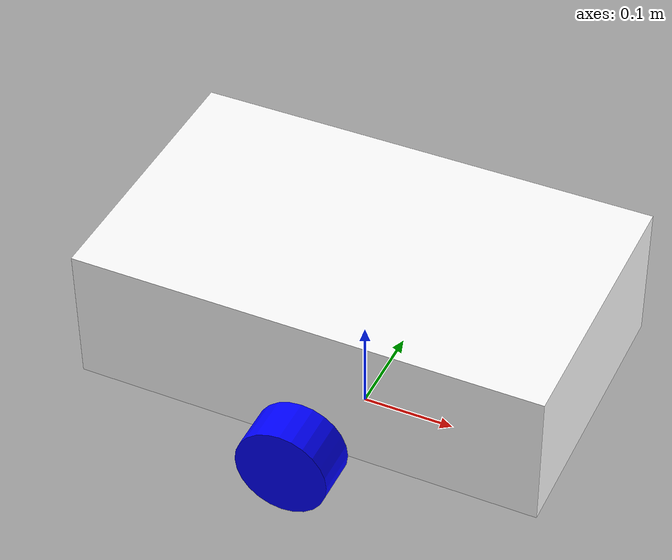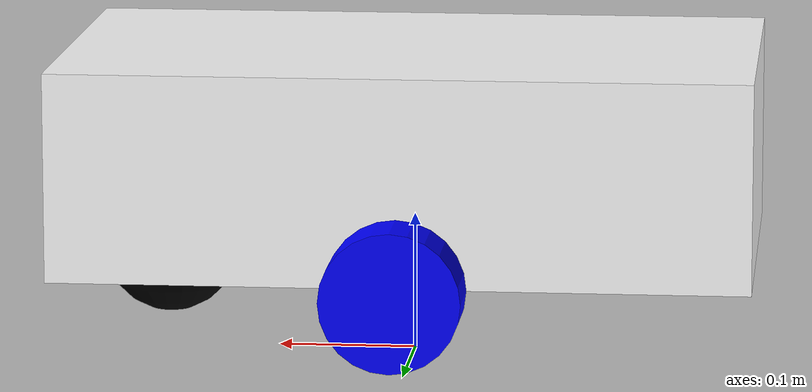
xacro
<?xml version="1.0"?>
<robot name="my_robot" xmlns:xacro="http://www.ros.org/wiki/xacro">

    <xacro:include filename="inertial_macros.xacro" />

    <material name="white"><color rgba="1 1 1 1"/></material>
    <material name="blue"><color rgba="0 0 1 1"/></material>
    <material name="black"><color rgba="0 0 0 1"/></material>

    <link name="base_footprint"></link>

    <joint name="base_link_joint" type="fixed">
        <parent link="base_footprint"/>
        <child link="base_link"/>
        <origin xyz="0 0 0.075" rpy="0 0 0"/>
    </joint>

    <link name="base_link">
        <visual>
            <origin xyz="0 0 0.075" rpy="0 0 0"/>
            <geometry><box size="0.5 0.3 0.15"/></geometry>
            <material name="white"/>
        </visual>
        <collision>
            <origin xyz="0 0 0.075" rpy="0 0 0"/>
            <geometry><box size="0.5 0.3 0.15"/></geometry>
        </collision>
        <xacro:inertial_box mass="0.5" x="0.5" y="0.3" z="0.15">
            <origin xyz="0 0 0.075" rpy="0 0 0"/>
        </xacro:inertial_box>
    </link>
    <gazebo reference="base_link"><material>Gazebo/White</material></gazebo>

    <joint name="left_wheel_joint" type="continuous">
        <parent link="base_link"/>
        <child link="left_wheel"/>
        <origin xyz="0 0.175 0" rpy="${-pi/2} 0 0"/>
        <axis xyz="0 0 1"/>
    </joint>

    <link name="left_wheel">
        <visual>
            <origin xyz="0 0 0" rpy="0 0 0"/>
            <geometry><cylinder radius="0.05" length="0.05"/></geometry>
            <material name="blue"/>
        </visual>
        <collision>
            <origin xyz="0 0 0" rpy="0 0 0"/>
            <geometry><cylinder radius="0.05" length="0.05"/></geometry>
        </collision>
        <xacro:inertial_cylinder mass="0.1" length="0.05" radius="0.05">
            <origin xyz="0 0 0" rpy="0 0 0"/>
        </xacro:inertial_cylinder>
    </link>
    <gazebo reference="left_wheel"><material>Gazebo/Blue</material></gazebo>

    <joint name="right_wheel_joint" type="continuous">
        <parent link="base_link"/>
        <child link="right_wheel"/>
        <origin xyz="0 -0.175 0" rpy="${pi/2} 0 0"/>
        <axis xyz="0 0 -1"/>
    </joint>

    <link name="right_wheel">
        <visual>
            <origin xyz="0 0 0" rpy="0 0 0"/>
            <geometry><cylinder radius="0.05" length="0.05"/></geometry>
            <material name="blue"/>
        </visual>
        <collision>
            <origin xyz="0 0 0" rpy="0 0 0"/>
            <geometry><cylinder radius="0.05" length="0.05"/></geometry>
        </collision>
        <xacro:inertial_cylinder mass="0.1" length="0.05" radius="0.05">
            <origin xyz="0 0 0" rpy="0 0 0"/>
        </xacro:inertial_cylinder>
    </link>
    <gazebo reference="right_wheel"><material>Gazebo/Blue</material></gazebo>

    <joint name="caster_wheel_joint" type="fixed">
        <parent link="base_link"/>
        <child link="caster_wheel"/>
        <origin xyz="0.18 0 0" rpy="0 0 0"/>
    </joint>

    <link name="caster_wheel">
        <visual>
            <origin xyz="0 0 0" rpy="0 0 0"/>
            <geometry><sphere radius="0.05"/></geometry>
            <material name="black"/>
        </visual>
        <collision>
            <origin xyz="0 0 0" rpy="0 0 0"/>
            <geometry><sphere radius="0.05"/></geometry>
        </collision>
        <xacro:inertial_sphere mass="0.1" radius="0.05">
            <origin xyz="0 0 0" rpy="0 0 0"/>
        </xacro:inertial_sphere>
    </link>
    <gazebo reference="caster_wheel">
        <material>Gazebo/Black</material>
        <mu1 value="0.3"/>
        <mu2 value="0.3"/>
    </gazebo>

</robot>

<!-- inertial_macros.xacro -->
<robot xmlns:xacro="http://www.ros.org/wiki/xacro">

    <xacro:macro name="inertial_box" params="mass x y z *origin">
        <inertial>
            <xacro:insert_block name="origin"/>
            <mass value="${mass}"/>
            <inertia ixx="${(1/12) * mass * (y*y + z*z)}" ixy="0.0" ixz="0.0"
                     iyy="${(1/12) * mass * (x*x + z*z)}" iyz="0.0"
                     izz="${(1/12) * mass * (x*x + y*y)}"/>
        </inertial>
    </xacro:macro>

    <xacro:macro name="inertial_cylinder" params="mass length radius *origin">
        <inertial>
            <xacro:insert_block name="origin"/>
            <mass value="${mass}"/>
            <inertia ixx="${(1/12) * mass * (3*radius*radius + length*length)}" ixy="0.0" ixz="0.0"
                     iyy="${(1/12) * mass * (3*radius*radius + length*length)}" iyz="0.0"
                     izz="${(1/2) * mass * radius*radius}"/>
        </inertial>
    </xacro:macro>

    <xacro:macro name="inertial_sphere" params="mass radius *origin">
        <inertial>
            <xacro:insert_block name="origin"/>
            <mass value="${mass}"/>
            <inertia ixx="${(2/5) * mass * radius*radius}" ixy="0.0" ixz="0.0"
                     iyy="${(2/5) * mass * radius*radius}" iyz="0.0"
                     izz="${(2/5) * mass * radius*radius}"/>
        </inertial>
    </xacro:macro>

</robot>
